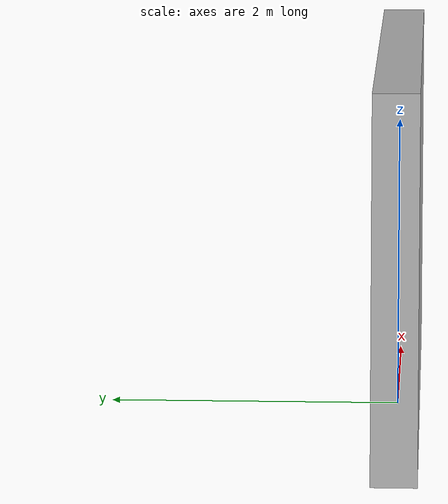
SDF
<?xml version="1.0" ?>
<sdf version="1.5">
  <model name="corridor_wall4">
    <static>true</static>
    <link name="link">
      <pose>0 0 1.25 0 0 0</pose>
      <collision name="collision">
        <geometry>
          <box>
            <size>5.0 0.3 2.5</size>
          </box>
        </geometry>
      </collision>
      <visual name="visual">
        <cast_shadows>false</cast_shadows>
        <geometry>
          <box>
            <size>5.0 0.3 2.5</size>
          </box>
        </geometry>
        <material>
          <script>
            <uri>model://corridor_wall4/materials/scripts</uri>
            <uri>model://corridor_wall4/materials/textures</uri>
            <name>vrc/corridor_wall4</name>
          </script>
        </material>
      </visual>
    </link>
  </model>
</sdf>
